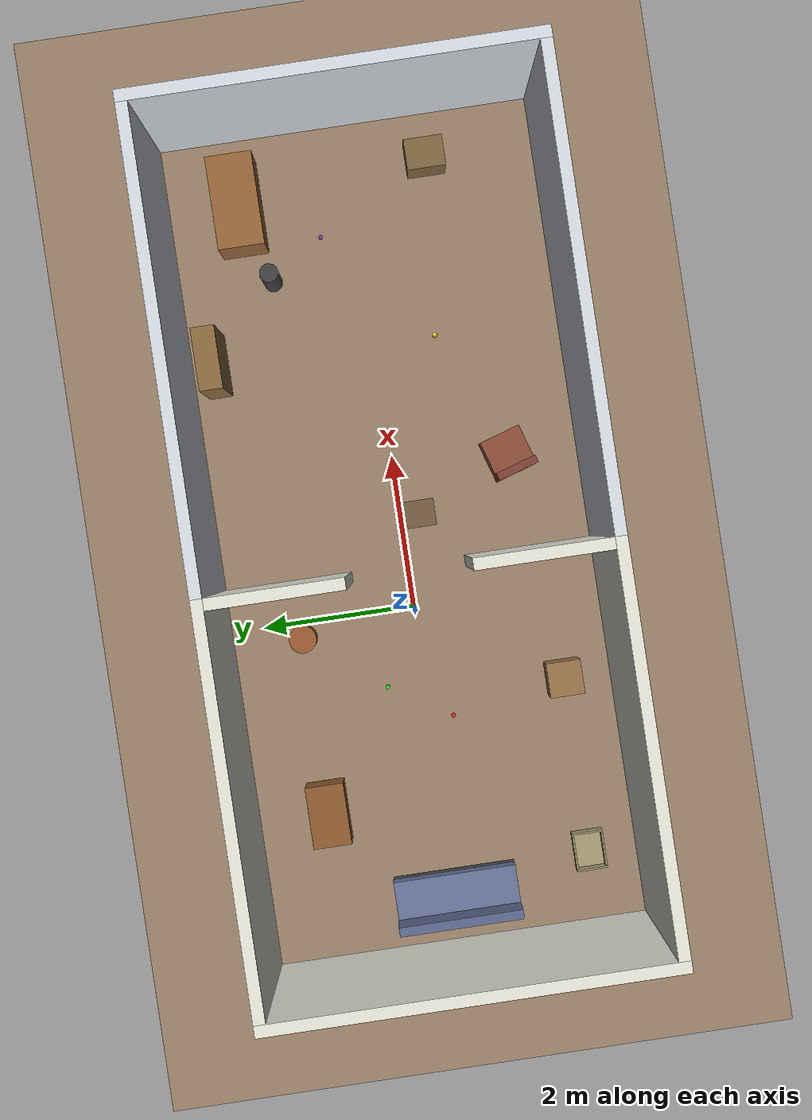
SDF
<?xml version="1.0"?>
<sdf version="1.9">
  <world name="tidy_home">

    <physics name="default_physics" type="ode">
      <max_step_size>0.001</max_step_size>
      <real_time_factor>1.0</real_time_factor>
      <real_time_update_rate>1000</real_time_update_rate>
    </physics>

    <gravity>0 0 -9.81</gravity>

    <!-- System plugins -->
    <plugin filename="ignition-gazebo-physics-system" name="ignition::gazebo::systems::Physics"/>
    <plugin filename="ignition-gazebo-sensors-system" name="ignition::gazebo::systems::Sensors">
      <render_engine>ogre2</render_engine>
    </plugin>
    <plugin filename="ignition-gazebo-scene-broadcaster-system" name="ignition::gazebo::systems::SceneBroadcaster"/>
    <plugin filename="ignition-gazebo-user-commands-system" name="ignition::gazebo::systems::UserCommands"/>
    <plugin filename="ignition-gazebo-contact-system" name="ignition::gazebo::systems::Contact"/>
    <plugin filename="ignition-gazebo-imu-system" name="ignition::gazebo::systems::Imu"/>

    <scene>
      <ambient>0.4 0.4 0.4 1.0</ambient>
      <background>0.7 0.8 0.9 1.0</background>
      <shadows>true</shadows>
    </scene>

    <!-- Lighting -->
    <light type="directional" name="sun">
      <cast_shadows>true</cast_shadows>
      <pose>0 0 10 0 0 0</pose>
      <diffuse>0.9 0.9 0.85 1</diffuse>
      <specular>0.3 0.3 0.3 1</specular>
      <direction>-0.5 0.3 -1.0</direction>
    </light>
    <light type="point" name="room1_light">
      <pose>-2.0 0 2.8 0 0 0</pose>
      <diffuse>0.8 0.8 0.7 1</diffuse>
      <attenuation><range>8</range><constant>0.5</constant><linear>0.1</linear><quadratic>0.01</quadratic></attenuation>
    </light>
    <light type="point" name="room2_light">
      <pose>4.0 0 2.8 0 0 0</pose>
      <diffuse>0.8 0.8 0.7 1</diffuse>
      <attenuation><range>8</range><constant>0.5</constant><linear>0.1</linear><quadratic>0.01</quadratic></attenuation>
    </light>

    <!-- ==================== GROUND ==================== -->
    <model name="ground_plane">
      <static>true</static>
      <link name="ground_link">
        <collision name="c">
          <geometry><plane><normal>0 0 1</normal><size>20 20</size></plane></geometry>
          <surface><friction><ode><mu>0.8</mu><mu2>0.6</mu2></ode></friction></surface>
        </collision>
        <visual name="v">
          <geometry><plane><normal>0 0 1</normal><size>20 20</size></plane></geometry>
          <material><ambient>0.55 0.45 0.35 1</ambient><diffuse>0.6 0.5 0.4 1</diffuse></material>
        </visual>
      </link>
    </model>

    <!-- ==================== WALLS ==================== -->
    <model name="wall_r1_west"><static>true</static><pose>-4.5 0 1.25 0 0 0</pose>
      <link name="l"><collision name="c"><geometry><box><size>0.15 5.15 2.5</size></box></geometry></collision>
      <visual name="v"><geometry><box><size>0.15 5.15 2.5</size></box></geometry>
        <material><ambient>0.85 0.85 0.80 1</ambient><diffuse>0.9 0.9 0.85 1</diffuse></material></visual></link></model>

    <model name="wall_r1_north"><static>true</static><pose>-2.0 2.5 1.25 0 0 0</pose>
      <link name="l"><collision name="c"><geometry><box><size>5.15 0.15 2.5</size></box></geometry></collision>
      <visual name="v"><geometry><box><size>5.15 0.15 2.5</size></box></geometry>
        <material><ambient>0.85 0.85 0.80 1</ambient><diffuse>0.9 0.9 0.85 1</diffuse></material></visual></link></model>

    <model name="wall_r1_south"><static>true</static><pose>-2.0 -2.5 1.25 0 0 0</pose>
      <link name="l"><collision name="c"><geometry><box><size>5.15 0.15 2.5</size></box></geometry></collision>
      <visual name="v"><geometry><box><size>5.15 0.15 2.5</size></box></geometry>
        <material><ambient>0.85 0.85 0.80 1</ambient><diffuse>0.9 0.9 0.85 1</diffuse></material></visual></link></model>

    <!-- Doorway: 1.5m wide opening from y=-0.75 to y=0.75 -->
    <model name="wall_div_north"><static>true</static><pose>0.5 1.625 1.25 0 0 0</pose>
      <link name="l"><collision name="c"><geometry><box><size>0.15 1.75 2.5</size></box></geometry></collision>
      <visual name="v"><geometry><box><size>0.15 1.75 2.5</size></box></geometry>
        <material><ambient>0.85 0.85 0.80 1</ambient><diffuse>0.9 0.9 0.85 1</diffuse></material></visual></link></model>

    <model name="wall_div_south"><static>true</static><pose>0.5 -1.625 1.25 0 0 0</pose>
      <link name="l"><collision name="c"><geometry><box><size>0.15 1.75 2.5</size></box></geometry></collision>
      <visual name="v"><geometry><box><size>0.15 1.75 2.5</size></box></geometry>
        <material><ambient>0.85 0.85 0.80 1</ambient><diffuse>0.9 0.9 0.85 1</diffuse></material></visual></link></model>

    <!-- Shoe rack just past doorway (forces Nav2 to plan around it) -->
    <model name="shoe_rack"><static>true</static><pose>1.2 -0.2 0.15 0 0 0</pose>
      <link name="body">
        <collision name="c"><geometry><box><size>0.35 0.50 0.30</size></box></geometry></collision>
        <visual name="v"><geometry><box><size>0.35 0.50 0.30</size></box></geometry>
          <material><ambient>0.40 0.30 0.20 1</ambient><diffuse>0.45 0.35 0.25 1</diffuse></material></visual>
        <inertial><mass>4.0</mass><inertia><ixx>0.06</ixx><iyy>0.04</iyy><izz>0.08</izz><ixy>0</ixy><ixz>0</ixz><iyz>0</iyz></inertia></inertial>
      </link>
    </model>

    <model name="wall_r2_east"><static>true</static><pose>6.5 0 1.25 0 0 0</pose>
      <link name="l"><collision name="c"><geometry><box><size>0.15 5.15 2.5</size></box></geometry></collision>
      <visual name="v"><geometry><box><size>0.15 5.15 2.5</size></box></geometry>
        <material><ambient>0.80 0.82 0.85 1</ambient><diffuse>0.85 0.87 0.90 1</diffuse></material></visual></link></model>

    <model name="wall_r2_north"><static>true</static><pose>3.5 2.5 1.25 0 0 0</pose>
      <link name="l"><collision name="c"><geometry><box><size>6.15 0.15 2.5</size></box></geometry></collision>
      <visual name="v"><geometry><box><size>6.15 0.15 2.5</size></box></geometry>
        <material><ambient>0.80 0.82 0.85 1</ambient><diffuse>0.85 0.87 0.90 1</diffuse></material></visual></link></model>

    <model name="wall_r2_south"><static>true</static><pose>3.5 -2.5 1.25 0 0 0</pose>
      <link name="l"><collision name="c"><geometry><box><size>6.15 0.15 2.5</size></box></geometry></collision>
      <visual name="v"><geometry><box><size>6.15 0.15 2.5</size></box></geometry>
        <material><ambient>0.80 0.82 0.85 1</ambient><diffuse>0.85 0.87 0.90 1</diffuse></material></visual></link></model>

    <!-- ==================== FURNITURE ==================== -->

    <!-- Couch against west wall (sits on floor with base + seat + back) -->
    <model name="couch"><static>true</static><pose>-3.8 0 0 0 0 0</pose>
      <link name="base"><pose>0 0 0.075 0 0 0</pose>
        <collision name="c"><geometry><box><size>0.6 1.6 0.15</size></box></geometry></collision>
        <visual name="v"><geometry><box><size>0.6 1.6 0.15</size></box></geometry>
          <material><ambient>0.25 0.25 0.25 1</ambient><diffuse>0.30 0.30 0.30 1</diffuse></material></visual>
        <inertial><mass>8.0</mass><inertia><ixx>1.7</ixx><iyy>0.32</iyy><izz>1.85</izz><ixy>0</ixy><ixz>0</ixz><iyz>0</iyz></inertia></inertial>
      </link>
      <link name="seat"><pose>0 0 0.25 0 0 0</pose>
        <collision name="c"><geometry><box><size>0.6 1.6 0.20</size></box></geometry></collision>
        <visual name="v"><geometry><box><size>0.6 1.6 0.20</size></box></geometry>
          <material><ambient>0.35 0.40 0.55 1</ambient><diffuse>0.40 0.45 0.60 1</diffuse></material></visual>
        <inertial><mass>10.0</mass><inertia><ixx>2.17</ixx><iyy>0.37</iyy><izz>2.37</izz><ixy>0</ixy><ixz>0</ixz><iyz>0</iyz></inertia></inertial>
      </link>
      <joint name="js" type="fixed"><parent>base</parent><child>seat</child></joint>
      <link name="back"><pose>-0.25 0 0.55 0 0 0</pose>
        <collision name="c"><geometry><box><size>0.12 1.6 0.40</size></box></geometry></collision>
        <visual name="v"><geometry><box><size>0.12 1.6 0.40</size></box></geometry>
          <material><ambient>0.30 0.35 0.50 1</ambient><diffuse>0.35 0.40 0.55 1</diffuse></material></visual>
        <inertial><mass>5.0</mass><inertia><ixx>0.90</ixx><iyy>0.07</iyy><izz>0.95</izz><ixy>0</ixy><ixz>0</ixz><iyz>0</iyz></inertia></inertial>
      </link>
      <joint name="jb" type="fixed"><parent>seat</parent><child>back</child></joint>
    </model>

    <!-- Coffee table (Room 1 north — solid block to floor) -->
    <model name="coffee_table"><static>true</static><pose>-2.5 1.5 0.225 0 0 0</pose>
      <link name="body">
        <collision name="c"><geometry><box><size>0.8 0.5 0.45</size></box></geometry></collision>
        <visual name="v"><geometry><box><size>0.8 0.5 0.45</size></box></geometry>
          <material><ambient>0.45 0.30 0.15 1</ambient><diffuse>0.55 0.35 0.18 1</diffuse></material></visual>
        <inertial><mass>8.0</mass><inertia><ixx>0.18</ixx><iyy>0.35</iyy><izz>0.43</izz><ixy>0</ixy><ixz>0</ixz><iyz>0</iyz></inertia></inertial>
      </link>
    </model>

    <!-- Shelf (Room 2 north wall — already grounded) -->
    <model name="shelf"><static>true</static><pose>3.5 2.1 0.6 0 0 0</pose>
      <link name="f">
        <collision name="c"><geometry><box><size>0.8 0.30 1.2</size></box></geometry></collision>
        <visual name="v"><geometry><box><size>0.8 0.30 1.2</size></box></geometry>
          <material><ambient>0.50 0.38 0.22 1</ambient><diffuse>0.55 0.42 0.25 1</diffuse></material></visual>
        <inertial><mass>12.0</mass><inertia><ixx>1.57</ixx><iyy>2.01</iyy><izz>0.57</izz><ixy>0</ixy><ixz>0</ixz><iyz>0</iyz></inertia></inertial>
      </link>
    </model>

    <!-- Desk (Room 2 east — solid block to floor) -->
    <model name="desk"><static>true</static><pose>5.5 1.5 0.36 0 0 0</pose>
      <link name="body">
        <collision name="c"><geometry><box><size>1.2 0.6 0.72</size></box></geometry></collision>
        <visual name="v"><geometry><box><size>1.2 0.6 0.72</size></box></geometry>
          <material><ambient>0.50 0.35 0.20 1</ambient><diffuse>0.60 0.40 0.22 1</diffuse></material></visual>
        <inertial><mass>12.0</mass><inertia><ixx>0.58</ixx><iyy>1.46</iyy><izz>1.68</izz><ixy>0</ixy><ixz>0</ixz><iyz>0</iyz></inertia></inertial>
      </link>
    </model>

    <!-- Room 1: side table (south wall, asymmetric placement) -->
    <model name="side_table"><static>true</static><pose>-1.2 -1.8 0.20 0 0 0</pose>
      <link name="body">
        <collision name="c"><geometry><box><size>0.45 0.45 0.40</size></box></geometry></collision>
        <visual name="v"><geometry><box><size>0.45 0.45 0.40</size></box></geometry>
          <material><ambient>0.55 0.40 0.25 1</ambient><diffuse>0.60 0.45 0.28 1</diffuse></material></visual>
        <inertial><mass>5.0</mass><inertia><ixx>0.11</ixx><iyy>0.11</iyy><izz>0.07</izz><ixy>0</ixy><ixz>0</ixz><iyz>0</iyz></inertia></inertial>
      </link>
    </model>

    <!-- Room 1: plant pot (near doorway, east side) -->
    <model name="plant_pot"><static>true</static><pose>-0.2 1.5 0.15 0 0 0</pose>
      <link name="body">
        <collision name="c"><geometry><cylinder><radius>0.18</radius><length>0.30</length></cylinder></geometry></collision>
        <visual name="v"><geometry><cylinder><radius>0.18</radius><length>0.30</length></cylinder></geometry>
          <material><ambient>0.55 0.30 0.15 1</ambient><diffuse>0.60 0.35 0.18 1</diffuse></material></visual>
        <inertial><mass>4.0</mass><inertia><ixx>0.04</ixx><iyy>0.04</iyy><izz>0.06</izz><ixy>0</ixy><ixz>0</ixz><iyz>0</iyz></inertia></inertial>
      </link>
    </model>

    <!-- Room 2: armchair (south-west, distinctive L-shape scan) -->
    <model name="armchair"><static>true</static><pose>1.8 -1.5 0 0 0 0.3</pose>
      <link name="seat"><pose>0 0 0.22 0 0 0</pose>
        <collision name="c"><geometry><box><size>0.55 0.55 0.44</size></box></geometry></collision>
        <visual name="v"><geometry><box><size>0.55 0.55 0.44</size></box></geometry>
          <material><ambient>0.50 0.25 0.20 1</ambient><diffuse>0.55 0.30 0.22 1</diffuse></material></visual>
        <inertial><mass>8.0</mass><inertia><ixx>0.22</ixx><iyy>0.22</iyy><izz>0.20</izz><ixy>0</ixy><ixz>0</ixz><iyz>0</iyz></inertia></inertial>
      </link>
      <link name="back"><pose>-0.22 0 0.50 0 0 0</pose>
        <collision name="c"><geometry><box><size>0.10 0.55 0.36</size></box></geometry></collision>
        <visual name="v"><geometry><box><size>0.10 0.55 0.36</size></box></geometry>
          <material><ambient>0.45 0.22 0.18 1</ambient><diffuse>0.50 0.25 0.20 1</diffuse></material></visual>
        <inertial><mass>3.0</mass><inertia><ixx>0.08</ixx><iyy>0.03</iyy><izz>0.09</izz><ixy>0</ixy><ixz>0</ixz><iyz>0</iyz></inertia></inertial>
      </link>
      <joint name="jb" type="fixed"><parent>seat</parent><child>back</child></joint>
    </model>

    <!-- Room 2: small cabinet (east wall, below desk level) -->
    <model name="cabinet"><static>true</static><pose>5.8 -1.0 0.25 0 0 0</pose>
      <link name="body">
        <collision name="c"><geometry><box><size>0.40 0.50 0.50</size></box></geometry></collision>
        <visual name="v"><geometry><box><size>0.40 0.50 0.50</size></box></geometry>
          <material><ambient>0.45 0.35 0.20 1</ambient><diffuse>0.50 0.40 0.25 1</diffuse></material></visual>
        <inertial><mass>10.0</mass><inertia><ixx>0.21</ixx><iyy>0.14</iyy><izz>0.18</izz><ixy>0</ixy><ixz>0</ixz><iyz>0</iyz></inertia></inertial>
      </link>
    </model>

    <!-- Room 2: tall lamp stand (center-north, cylindrical for unique scan) -->
    <model name="lamp_stand"><static>true</static><pose>4.5 1.2 0.40 0 0 0</pose>
      <link name="body">
        <collision name="c"><geometry><cylinder><radius>0.12</radius><length>0.80</length></cylinder></geometry></collision>
        <visual name="v"><geometry><cylinder><radius>0.12</radius><length>0.80</length></cylinder></geometry>
          <material><ambient>0.20 0.20 0.20 1</ambient><diffuse>0.25 0.25 0.25 1</diffuse></material></visual>
        <inertial><mass>3.0</mass><inertia><ixx>0.17</ixx><iyy>0.17</iyy><izz>0.02</izz><ixy>0</ixy><ixz>0</ixz><iyz>0</iyz></inertia></inertial>
      </link>
    </model>

    <!-- ==================== COLLECTION BOX ==================== -->
    <model name="collection_box"><static>true</static><pose>-3.5 -1.8 0 0 0 0</pose>
      <link name="bottom"><pose>0 0 0.01 0 0 0</pose>
        <collision name="c"><geometry><box><size>0.50 0.40 0.02</size></box></geometry></collision>
        <visual name="v"><geometry><box><size>0.50 0.40 0.02</size></box></geometry>
          <material><ambient>0.6 0.55 0.40 1</ambient><diffuse>0.65 0.60 0.45 1</diffuse></material></visual>
        <inertial><mass>1.0</mass><inertia><ixx>0.013</ixx><iyy>0.021</iyy><izz>0.034</izz><ixy>0</ixy><ixz>0</ixz><iyz>0</iyz></inertia></inertial>
      </link>
      <link name="wf"><pose>0.24 0 0.10 0 0 0</pose>
        <collision name="c"><geometry><box><size>0.02 0.40 0.18</size></box></geometry></collision>
        <visual name="v"><geometry><box><size>0.02 0.40 0.18</size></box></geometry>
          <material><ambient>0.6 0.55 0.40 1</ambient><diffuse>0.65 0.60 0.45 1</diffuse></material></visual></link>
      <joint name="jf" type="fixed"><parent>bottom</parent><child>wf</child></joint>
      <link name="wb"><pose>-0.24 0 0.10 0 0 0</pose>
        <collision name="c"><geometry><box><size>0.02 0.40 0.18</size></box></geometry></collision>
        <visual name="v"><geometry><box><size>0.02 0.40 0.18</size></box></geometry>
          <material><ambient>0.6 0.55 0.40 1</ambient><diffuse>0.65 0.60 0.45 1</diffuse></material></visual></link>
      <joint name="jb" type="fixed"><parent>bottom</parent><child>wb</child></joint>
      <link name="wl"><pose>0 0.19 0.10 0 0 0</pose>
        <collision name="c"><geometry><box><size>0.46 0.02 0.18</size></box></geometry></collision>
        <visual name="v"><geometry><box><size>0.46 0.02 0.18</size></box></geometry>
          <material><ambient>0.6 0.55 0.40 1</ambient><diffuse>0.65 0.60 0.45 1</diffuse></material></visual></link>
      <joint name="jl" type="fixed"><parent>bottom</parent><child>wl</child></joint>
      <link name="wr"><pose>0 -0.19 0.10 0 0 0</pose>
        <collision name="c"><geometry><box><size>0.46 0.02 0.18</size></box></geometry></collision>
        <visual name="v"><geometry><box><size>0.46 0.02 0.18</size></box></geometry>
          <material><ambient>0.6 0.55 0.40 1</ambient><diffuse>0.65 0.60 0.45 1</diffuse></material></visual></link>
      <joint name="jr" type="fixed"><parent>bottom</parent><child>wr</child></joint>
    </model>

    <!-- ==================== 5 PICKUP OBJECTS ==================== -->

    <!-- Red block (Room 1, in front of spawn) -->
    <model name="pickup_red_block"><pose>-1.5 -0.3 0.025 0 0 0.3</pose>
      <link name="link">
        <collision name="c"><geometry><box><size>0.05 0.05 0.05</size></box></geometry>
          <surface><friction><ode><mu>0.8</mu><mu2>0.6</mu2></ode></friction></surface></collision>
        <visual name="v"><geometry><box><size>0.05 0.05 0.05</size></box></geometry>
          <material><ambient>0.8 0.1 0.1 1</ambient><diffuse>0.9 0.15 0.15 1</diffuse></material></visual>
        <inertial><mass>0.05</mass><inertia><ixx>0.0000042</ixx><iyy>0.0000042</iyy><izz>0.0000042</izz><ixy>0</ixy><ixz>0</ixz><iyz>0</iyz></inertia></inertial>
      </link>
    </model>

    <!-- Green can (Room 1 east) -->
    <model name="pickup_green_can"><pose>-1.0 0.5 0.04 0 0 0</pose>
      <link name="link">
        <collision name="c"><geometry><cylinder><radius>0.03</radius><length>0.08</length></cylinder></geometry>
          <surface><friction><ode><mu>0.8</mu><mu2>0.6</mu2></ode></friction></surface></collision>
        <visual name="v"><geometry><cylinder><radius>0.03</radius><length>0.08</length></cylinder></geometry>
          <material><ambient>0.1 0.7 0.15 1</ambient><diffuse>0.15 0.8 0.2 1</diffuse></material></visual>
        <inertial><mass>0.08</mass><inertia><ixx>0.0000053</ixx><iyy>0.0000053</iyy><izz>0.0000036</izz><ixy>0</ixy><ixz>0</ixz><iyz>0</iyz></inertia></inertial>
      </link>
    </model>

    <!-- Blue toy (Room 2 entrance) -->
    <model name="pickup_blue_toy"><pose>2.0 0.0 0.025 0 0 0.7</pose>
      <link name="link">
        <collision name="c"><geometry><box><size>0.06 0.04 0.05</size></box></geometry>
          <surface><friction><ode><mu>0.8</mu><mu2>0.6</mu2></ode></friction></surface></collision>
        <visual name="v"><geometry><box><size>0.06 0.04 0.05</size></box></geometry>
          <material><ambient>0.1 0.2 0.8 1</ambient><diffuse>0.15 0.25 0.9 1</diffuse></material></visual>
        <inertial><mass>0.04</mass><inertia><ixx>0.0000014</ixx><iyy>0.0000020</iyy><izz>0.0000017</izz><ixy>0</ixy><ixz>0</ixz><iyz>0</iyz></inertia></inertial>
      </link>
    </model>

    <!-- Yellow ball (Room 2 center) -->
    <model name="pickup_yellow_ball"><pose>3.5 -0.8 0.035 0 0 0</pose>
      <link name="link">
        <collision name="c"><geometry><sphere><radius>0.035</radius></sphere></geometry>
          <surface><friction><ode><mu>0.8</mu><mu2>0.6</mu2></ode></friction></surface></collision>
        <visual name="v"><geometry><sphere><radius>0.035</radius></sphere></geometry>
          <material><ambient>0.8 0.7 0.1 1</ambient><diffuse>0.9 0.8 0.15 1</diffuse></material></visual>
        <inertial><mass>0.06</mass><inertia><ixx>0.0000029</ixx><iyy>0.0000029</iyy><izz>0.0000029</izz><ixy>0</ixy><ixz>0</ixz><iyz>0</iyz></inertia></inertial>
      </link>
    </model>

    <!-- Purple cylinder (Room 2 far east) -->
    <model name="pickup_purple_cyl"><pose>5.0 0.5 0.03 0 0 0.5</pose>
      <link name="link">
        <collision name="c"><geometry><cylinder><radius>0.025</radius><length>0.06</length></cylinder></geometry>
          <surface><friction><ode><mu>0.8</mu><mu2>0.6</mu2></ode></friction></surface></collision>
        <visual name="v"><geometry><cylinder><radius>0.025</radius><length>0.06</length></cylinder></geometry>
          <material><ambient>0.5 0.1 0.6 1</ambient><diffuse>0.6 0.15 0.7 1</diffuse></material></visual>
        <inertial><mass>0.05</mass><inertia><ixx>0.0000020</ixx><iyy>0.0000020</iyy><izz>0.0000016</izz><ixy>0</ixy><ixz>0</ixz><iyz>0</iyz></inertia></inertial>
      </link>
    </model>

  </world>
</sdf>
